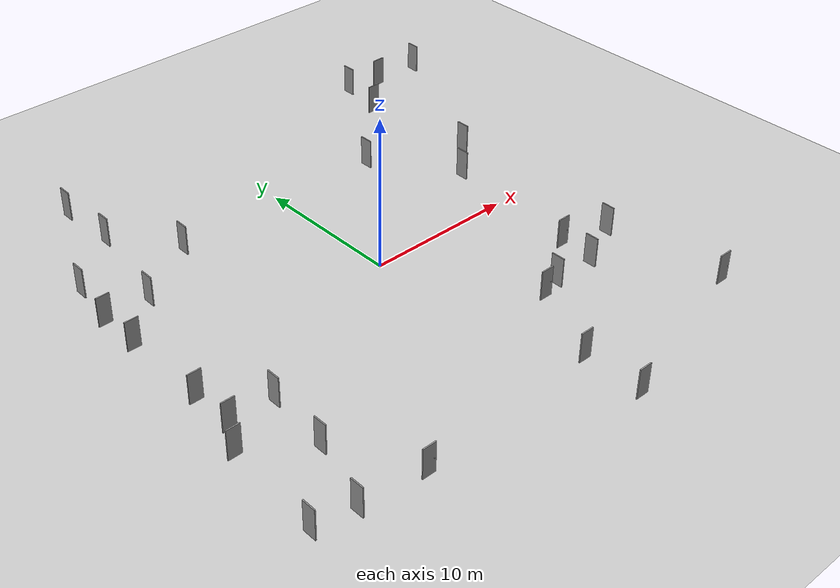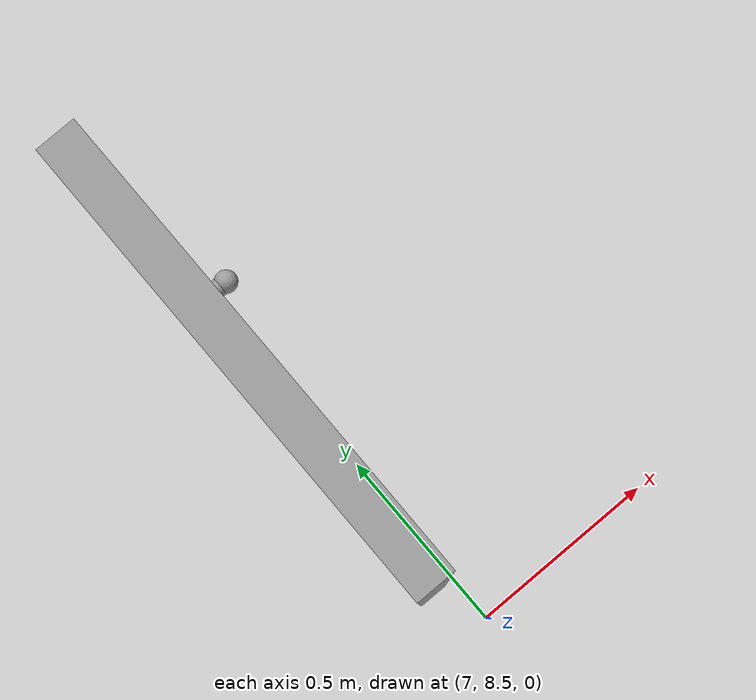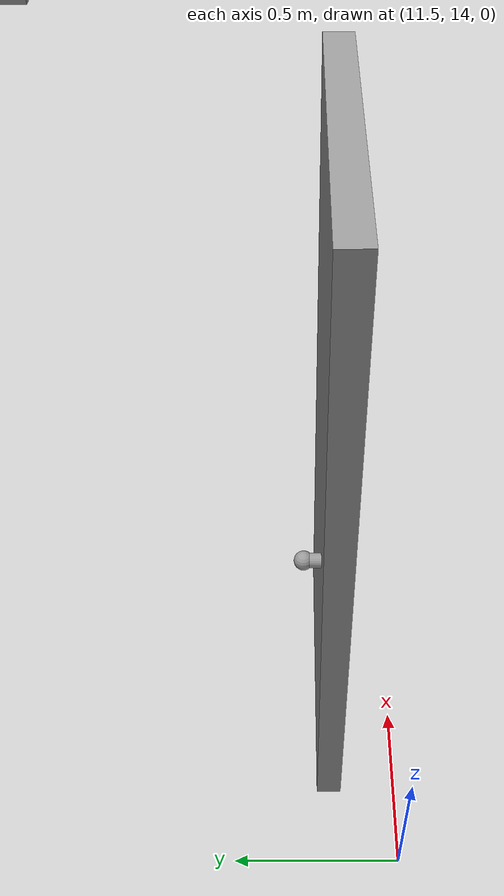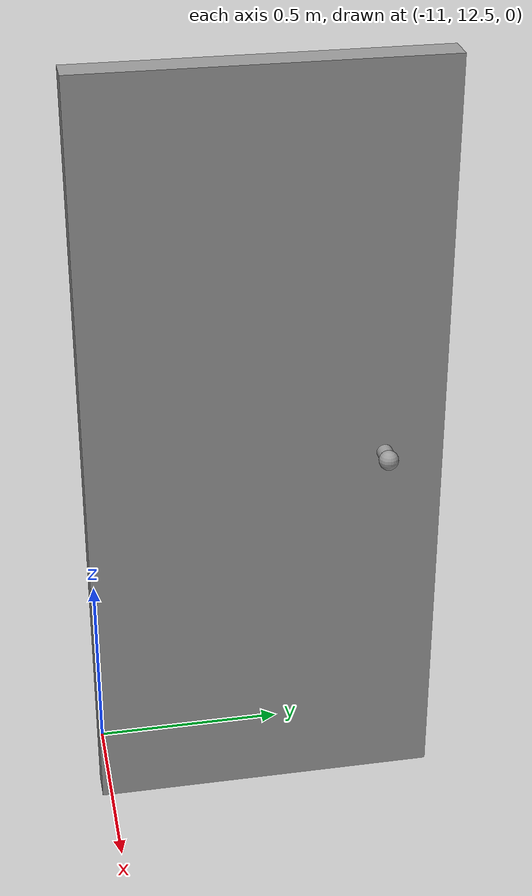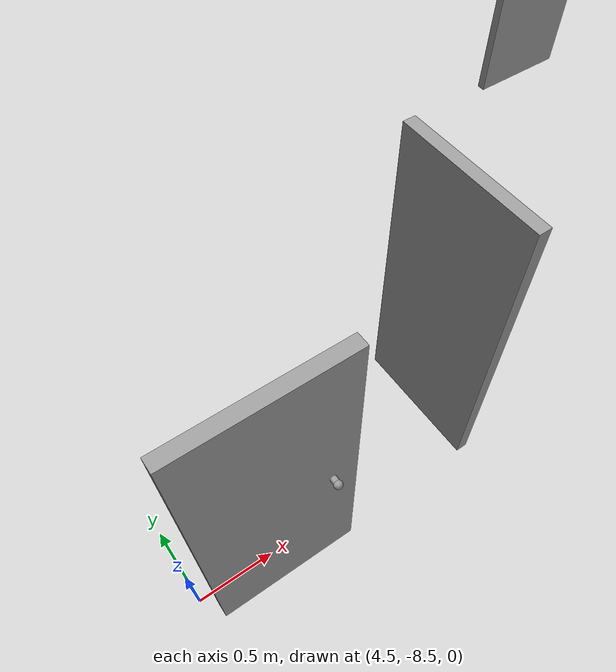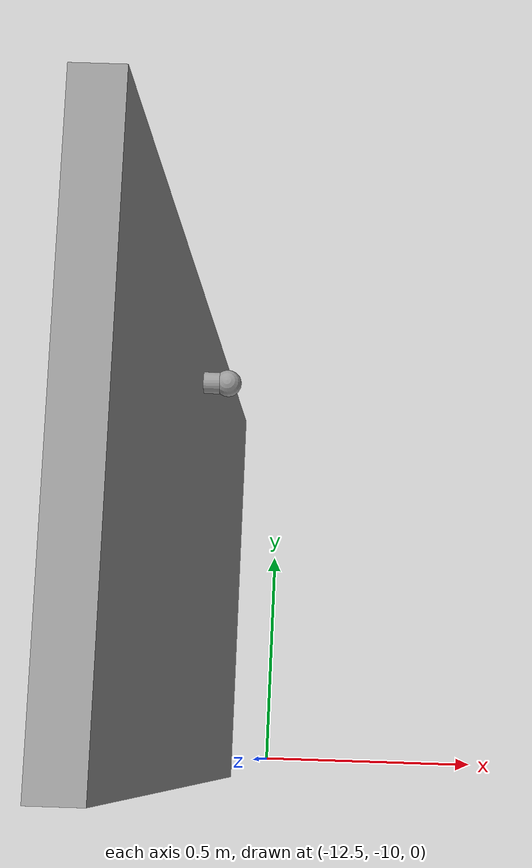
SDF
<sdf version="1.6">
 <world name="default">
  <light name="sun" type="directional">
   <pose>0 0 10 0 -0 0</pose>
   <diffuse>0.8 0.8 0.8 1</diffuse>
   <specular>0.2 0.2 0.2 1</specular>
   <attenuation>
    <range>1000</range>
    <constant>0.9</constant>
    <linear>0.01</linear>
    <quadratic>0.001</quadratic>
   </attenuation>
   <direction>-0.5 0.1 -0.9</direction>
  </light>
  <model name="ground_plane">
   <static>1</static>
   <link name="link">
    <collision name="collision">
     <geometry><plane><normal>0 0 1</normal><size>100 100</size></plane></geometry>
     <surface>
      <contact><collide_bitmask>65535</collide_bitmask></contact>
      <friction><ode><mu>100</mu><mu2>50</mu2></ode></friction>
     </surface>
    </collision>
    <visual name="visual">
     <cast_shadows>0</cast_shadows>
     <geometry><plane><normal>0 0 1</normal><size>100 100</size></plane></geometry>
     <material>
      <script><uri>file://media/materials/scripts/gazebo.material</uri><name>Gazebo/Grey</name></script>
     </material>
    </visual>
   </link>
  </model>
  <gravity>0 0 -9.8</gravity>
  <magnetic_field>6e-06 2.3e-05 -4.2e-05</magnetic_field>
  <atmosphere type="adiabatic"/>
  <physics name="default_physics" default="0" type="ode">
   <max_step_size>0.0007</max_step_size>
   <real_time_factor>1</real_time_factor>
   <real_time_update_rate>1000</real_time_update_rate>
  </physics>
  <scene><ambient>0.4 0.4 0.4 1</ambient><background>0.7 0.7 0.7 1</background><shadows>1</shadows></scene>
  <spherical_coordinates>
   <surface_model>EARTH_WGS84</surface_model>
   <latitude_deg>0</latitude_deg>
   <longitude_deg>0</longitude_deg>
   <elevation>0</elevation>
   <heading_deg>0</heading_deg>
  </spherical_coordinates>
  <plugin name="puppeteer" filename="libpuppeteer.so">
   <building_name>building</building_name>
   <robot_name>jackal</robot_name>
  </plugin>
  <model name="box_30">
   <pose>17.250000 -20.125000 -0.500000 0.000000 -0.000000 0.000000</pose>
   <static>true</static>
   <link name="box_30_link">
    <collision name="box_30_collision">
     <geometry><box><size>5.500000 0.250000 1</size></box></geometry>
    </collision>
   </link>
  </model>
  <model name="box_31">
   <pose>17.250000 5.125000 -0.500000 0.000000 -0.000000 0.000000</pose>
   <static>true</static>
   <link name="box_31_link">
    <collision name="box_31_collision">
     <geometry><box><size>5.500000 0.250000 1</size></box></geometry>
    </collision>
   </link>
  </model>
  <model name="box_32">
   <pose>14.375000 -7.500000 -0.500000 0.000000 -0.000000 0.000000</pose>
   <static>true</static>
   <link name="box_32_link">
    <collision name="box_32_collision">
     <geometry><box><size>0.250000 25.500000 1</size></box></geometry>
    </collision>
   </link>
  </model>
  <model name="box_33">
   <pose>20.125000 -7.500000 -0.500000 0.000000 -0.000000 0.000000</pose>
   <static>true</static>
   <link name="box_33_link">
    <collision name="box_33_collision">
     <geometry><box><size>0.250000 25.500000 1</size></box></geometry>
    </collision>
   </link>
  </model>
  <model name="box_34">
   <pose>-10.700000 -5.725000 -0.500000 0.000000 -0.000000 0.000000</pose>
   <static>true</static>
   <link name="box_34_link">
    <collision name="box_34_collision">
     <geometry><box><size>3.400000 0.250000 1</size></box></geometry>
    </collision>
   </link>
  </model>
  <model name="box_35">
   <pose>-10.700000 5.725000 -0.500000 0.000000 -0.000000 0.000000</pose>
   <static>true</static>
   <link name="box_35_link">
    <collision name="box_35_collision">
     <geometry><box><size>3.400000 0.250000 1</size></box></geometry>
    </collision>
   </link>
  </model>
  <model name="box_36">
   <pose>-12.525000 0.000000 -0.500000 0.000000 -0.000000 0.000000</pose>
   <static>true</static>
   <link name="box_36_link">
    <collision name="box_36_collision">
     <geometry><box><size>0.250000 11.700000 1</size></box></geometry>
    </collision>
   </link>
  </model>
  <model name="box_37">
   <pose>-8.875000 0.000000 -0.500000 0.000000 -0.000000 0.000000</pose>
   <static>true</static>
   <link name="box_37_link">
    <collision name="box_37_collision">
     <geometry><box><size>0.250000 11.700000 1</size></box></geometry>
    </collision>
   </link>
  </model>
  <model name="box_38">
   <pose>-17.350000 -2.915000 -0.500000 0.000000 -0.000000 0.000000</pose>
   <static>true</static>
   <link name="box_38_link">
    <collision name="box_38_collision">
     <geometry><box><size>5.300000 0.250000 1</size></box></geometry>
    </collision>
   </link>
  </model>
  <model name="box_39">
   <pose>-17.350000 2.725000 -0.500000 0.000000 -0.000000 0.000000</pose>
   <static>true</static>
   <link name="box_39_link">
    <collision name="box_39_collision">
     <geometry><box><size>5.300000 0.250000 1</size></box></geometry>
    </collision>
   </link>
  </model>
  <model name="box_40">
   <pose>-20.125000 -0.095000 -0.500000 0.000000 -0.000000 0.000000</pose>
   <static>true</static>
   <link name="box_40_link">
    <collision name="box_40_collision">
     <geometry><box><size>0.250000 5.890000 1</size></box></geometry>
    </collision>
   </link>
  </model>
  <model name="box_41">
   <pose>-14.575000 -0.095000 -0.500000 0.000000 -0.000000 0.000000</pose>
   <static>true</static>
   <link name="box_41_link">
    <collision name="box_41_collision">
     <geometry><box><size>0.250000 5.890000 1</size></box></geometry>
    </collision>
   </link>
  </model>
  <model name="box_42">
   <pose>-10.750000 -20.125000 -0.500000 0.000000 -0.000000 0.000000</pose>
   <static>true</static>
   <link name="box_42_link">
    <collision name="box_42_collision">
     <geometry><box><size>2.500000 0.250000 1</size></box></geometry>
    </collision>
   </link>
  </model>
  <model name="box_43">
   <pose>-10.750000 -14.875000 -0.500000 0.000000 -0.000000 0.000000</pose>
   <static>true</static>
   <link name="box_43_link">
    <collision name="box_43_collision">
     <geometry><box><size>2.500000 0.250000 1</size></box></geometry>
    </collision>
   </link>
  </model>
  <model name="box_44">
   <pose>-12.125000 -17.500000 -0.500000 0.000000 -0.000000 0.000000</pose>
   <static>true</static>
   <link name="box_44_link">
    <collision name="box_44_collision">
     <geometry><box><size>0.250000 5.500000 1</size></box></geometry>
    </collision>
   </link>
  </model>
  <model name="box_45">
   <pose>-9.375000 -17.500000 -0.500000 0.000000 -0.000000 0.000000</pose>
   <static>true</static>
   <link name="box_45_link">
    <collision name="box_45_collision">
     <geometry><box><size>0.250000 5.500000 1</size></box></geometry>
    </collision>
   </link>
  </model>
  <model name="box_46">
   <pose>-18.400000 -20.125000 -0.500000 0.000000 -0.000000 0.000000</pose>
   <static>true</static>
   <link name="box_46_link">
    <collision name="box_46_collision">
     <geometry><box><size>3.200000 0.250000 1</size></box></geometry>
    </collision>
   </link>
  </model>
  <model name="box_47">
   <pose>-18.400000 -12.875000 -0.500000 0.000000 -0.000000 0.000000</pose>
   <static>true</static>
   <link name="box_47_link">
    <collision name="box_47_collision">
     <geometry><box><size>3.200000 0.250000 1</size></box></geometry>
    </collision>
   </link>
  </model>
  <model name="box_48">
   <pose>-20.125000 -16.500000 -0.500000 0.000000 -0.000000 0.000000</pose>
   <static>true</static>
   <link name="box_48_link">
    <collision name="box_48_collision">
     <geometry><box><size>0.250000 7.500000 1</size></box></geometry>
    </collision>
   </link>
  </model>
  <model name="box_49">
   <pose>-16.675000 -16.500000 -0.500000 0.000000 -0.000000 0.000000</pose>
   <static>true</static>
   <link name="box_49_link">
    <collision name="box_49_collision">
     <geometry><box><size>0.250000 7.500000 1</size></box></geometry>
    </collision>
   </link>
  </model>
  <model name="box_50">
   <pose>-2.150000 -9.125000 -0.500000 0.000000 -0.000000 0.000000</pose>
   <static>true</static>
   <link name="box_50_link">
    <collision name="box_50_collision">
     <geometry><box><size>9.700000 0.250000 1</size></box></geometry>
    </collision>
   </link>
  </model>
  <model name="box_51">
   <pose>-2.150000 -4.875000 -0.500000 0.000000 -0.000000 0.000000</pose>
   <static>true</static>
   <link name="box_51_link">
    <collision name="box_51_collision">
     <geometry><box><size>9.700000 0.250000 1</size></box></geometry>
    </collision>
   </link>
  </model>
  <model name="box_52">
   <pose>-7.125000 -7.000000 -0.500000 0.000000 -0.000000 0.000000</pose>
   <static>true</static>
   <link name="box_52_link">
    <collision name="box_52_collision">
     <geometry><box><size>0.250000 4.500000 1</size></box></geometry>
    </collision>
   </link>
  </model>
  <model name="box_53">
   <pose>2.825000 -7.000000 -0.500000 0.000000 -0.000000 0.000000</pose>
   <static>true</static>
   <link name="box_53_link">
    <collision name="box_53_collision">
     <geometry><box><size>0.250000 4.500000 1</size></box></geometry>
    </collision>
   </link>
  </model>
  <include>
   <name>door_0</name>
   <pose>-10.987250 16.475000 1.000000 0.000000 -0.000000 1.571000</pose>
   <uri>model://simple_door2</uri>
  </include>
  <include>
   <name>door_1</name>
   <pose>-14.624989 9.030960 1.000000 0.000000 -0.000000 1.571000</pose>
   <uri>model://simple_door2</uri>
  </include>
  <include>
   <name>door_2</name>
   <pose>-10.775058 12.475000 1.000000 0.000000 -0.000000 1.571000</pose>
   <uri>model://simple_door2</uri>
  </include>
  <include>
   <name>door_3</name>
   <pose>-7.761390 8.625000 1.000000 0.000000 -0.000000 1.571000</pose>
   <uri>model://simple_door2</uri>
  </include>
  <include>
   <name>door_4</name>
   <pose>6.935080 8.625000 1.000000 0.000000 -0.000000 1.571000</pose>
   <uri>model://simple_door2</uri>
  </include>
  <include>
   <name>door_5</name>
   <pose>12.624992 14.208450 1.000000 0.000000 -0.000000 -3.141185</pose>
   <uri>model://simple_door2</uri>
  </include>
  <include>
   <name>door_6</name>
   <pose>12.625004 16.932710 1.000000 0.000000 -0.000000 1.571000</pose>
   <uri>model://simple_door2</uri>
  </include>
  <include>
   <name>door_7</name>
   <pose>18.478948 16.484045 1.000000 0.000000 -0.000000 1.571000</pose>
   <uri>model://simple_door2</uri>
  </include>
  <include>
   <name>door_8</name>
   <pose>15.475004 16.925590 1.000000 0.000000 -0.000000 -3.141185</pose>
   <uri>model://simple_door2</uri>
  </include>
  <include>
   <name>door_9</name>
   <pose>-14.625002 6.214056 1.000000 0.000000 -0.000000 -3.141185</pose>
   <uri>model://simple_door2</uri>
  </include>
  <include>
   <name>door_10</name>
   <pose>-14.625002 3.346128 1.000000 0.000000 -0.000000 -3.141185</pose>
   <uri>model://simple_door2</uri>
  </include>
  <include>
   <name>door_11</name>
   <pose>-14.625007 -2.443840 1.000000 0.000000 -0.000000 -3.141185</pose>
   <uri>model://simple_door2</uri>
  </include>
  <include>
   <name>door_12</name>
   <pose>-14.625002 -5.329808 1.000000 0.000000 -0.000000 -3.141185</pose>
   <uri>model://simple_door2</uri>
  </include>
  <include>
   <name>door_13</name>
   <pose>-15.625002 -7.097462 1.000000 0.000000 -0.000000 -3.141185</pose>
   <uri>model://simple_door2</uri>
  </include>
  <include>
   <name>door_14</name>
   <pose>-14.061730 -14.474920 1.000000 0.000000 -0.000000 1.571000</pose>
   <uri>model://simple_door2</uri>
  </include>
  <include>
   <name>door_15</name>
   <pose>-10.281770 -14.475003 1.000000 0.000000 -0.000000 0.000000</pose>
   <uri>model://simple_door2</uri>
  </include>
  <include>
   <name>door_16</name>
   <pose>-12.150050 5.775003 1.000000 0.000000 -0.000000 1.571000</pose>
   <uri>model://simple_door2</uri>
  </include>
  <include>
   <name>door_17</name>
   <pose>-12.167990 -5.775000 1.000000 0.000000 -0.000000 1.571000</pose>
   <uri>model://simple_door2</uri>
  </include>
  <include>
   <name>door_18</name>
   <pose>-16.625004 -14.047594 1.000000 0.000000 -0.000000 1.571000</pose>
   <uri>model://simple_door2</uri>
  </include>
  <include>
   <name>door_19</name>
   <pose>-12.624997 -10.048217 1.000000 0.000000 -0.000000 1.571000</pose>
   <uri>model://simple_door2</uri>
  </include>
  <include>
   <name>door_20</name>
   <pose>13.031310 5.774995 1.000000 0.000000 -0.000000 1.571000</pose>
   <uri>model://simple_door2</uri>
  </include>
  <include>
   <name>door_21</name>
   <pose>10.625002 3.385427 1.000000 0.000000 -0.000000 1.571000</pose>
   <uri>model://simple_door2</uri>
  </include>
  <include>
   <name>door_22</name>
   <pose>9.193120 -5.774995 1.000000 0.000000 -0.000000 0.000000</pose>
   <uri>model://simple_door2</uri>
  </include>
  <include>
   <name>door_23</name>
   <pose>2.924993 -13.796720 1.000000 0.000000 -0.000000 -3.141185</pose>
   <uri>model://simple_door2</uri>
  </include>
  <include>
   <name>door_24</name>
   <pose>2.925000 -17.742519 1.000000 0.000000 -0.000000 -3.141185</pose>
   <uri>model://simple_door2</uri>
  </include>
  <include>
   <name>door_25</name>
   <pose>4.583714 -8.625000 1.000000 0.000000 -0.000000 0.000000</pose>
   <uri>model://simple_door2</uri>
  </include>
  <include>
   <name>door_26</name>
   <pose>6.431060 -8.625000 1.000000 0.000000 -0.000000 1.571000</pose>
   <uri>model://simple_door2</uri>
  </include>
  <include>
   <name>door_27</name>
   <pose>9.399440 -8.625000 1.000000 0.000000 -0.000000 1.571000</pose>
   <uri>model://simple_door2</uri>
  </include>
  <include>
   <name>door_28</name>
   <pose>13.352706 -14.475002 1.000000 0.000000 -0.000000 0.000000</pose>
   <uri>model://simple_door2</uri>
  </include>
  <include>
   <name>door_29</name>
   <pose>12.624998 -7.129598 1.000000 0.000000 -0.000000 1.571000</pose>
   <uri>model://simple_door2</uri>
  </include>
 </world>
</sdf>

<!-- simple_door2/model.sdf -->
<sdf version='1.6'>
  <model name='simple_door2'>
    <link name='link'>
      <self_collide>0</self_collide>
      <enable_wind>0</enable_wind>
      <kinematic>0</kinematic>
      <pose frame=''>0.45 0 -0 0 -0 0</pose>
      <gravity>0</gravity>
      <visual name='visual'>
        <geometry>
          <box>
            <size>0.9 0.075 2</size>
          </box>
        </geometry>
        <material>
          <script>
            <name>Gazebo/Grey</name>
            <uri>file://media/materials/scripts/gazebo.material</uri>
          </script>
          <shader type='pixel'>
            <normal_map>__default__</normal_map>
          </shader>
          <ambient>0.3 0.3 0.3 1</ambient>
          <diffuse>0.7 0.7 0.7 1</diffuse>
          <specular>0.01 0.01 0.01 1</specular>
          <emissive>0 0 0 1</emissive>
        </material>
        <pose frame=''>0 0 0 0 -0 0</pose>
        <transparency>0</transparency>
        <cast_shadows>1</cast_shadows>
      </visual>

    </link>
    <link name='link_2'>
      <pose frame=''>0.750001 -0.0525 -0 1.57 6e-06 0</pose>
      <gravity>0</gravity>
      <self_collide>0</self_collide>
      <kinematic>0</kinematic>
      <enable_wind>0</enable_wind>
      <visual name='visual'>
        <pose frame=''>0 0 0 0 -0 0</pose>
        <geometry>
          <cylinder>
            <radius>0.02</radius>
            <length>0.03</length>
          </cylinder>
        </geometry>
        <material>
          <lighting>1</lighting>
          <script>
            <uri>file://media/materials/scripts/gazebo.material</uri>
            <name>Gazebo/Grey</name>
          </script>
          <shader type='pixel'>
            <normal_map>__default__</normal_map>
          </shader>
          <ambient>0.3 0.3 0.3 1</ambient>
          <diffuse>0.7 0.7 0.7 1</diffuse>
          <specular>0.01 0.01 0.01 1</specular>
          <emissive>0 0 0 1</emissive>
        </material>
        <transparency>0</transparency>
        <cast_shadows>1</cast_shadows>
      </visual>

    </link>
    <link name='link_3'>
      <pose frame=''>0.750001 -0.0825 2.4e-05 -6.1e-05 6e-06 0.010426</pose>
      <gravity>0</gravity>
      <self_collide>0</self_collide>
      <kinematic>0</kinematic>
      <enable_wind>0</enable_wind>
      <visual name='visual'>
        <pose frame=''>0 0 0 0 -0 0</pose>
        <geometry>
          <sphere>
            <radius>0.025</radius>
          </sphere>
        </geometry>
        <material>
          <lighting>1</lighting>
          <script>
            <uri>file://media/materials/scripts/gazebo.material</uri>
            <name>Gazebo/Grey</name>
          </script>
          <shader type='pixel'>
            <normal_map>__default__</normal_map>
          </shader>
          <ambient>0.3 0.3 0.3 1</ambient>
          <diffuse>0.7 0.7 0.7 1</diffuse>
          <specular>0.01 0.01 0.01 1</specular>
          <emissive>0 0 0 1</emissive>
        </material>
        <transparency>0</transparency>
        <cast_shadows>1</cast_shadows>
      </visual>
    </link>
    <joint name='link_2_JOINT_3' type='fixed'>
      <parent>link_2</parent>
      <child>link_3</child>
      <pose frame=''>0 0 0 0 -0 0</pose>
      <physics>
        <ode>
          <limit>
            <cfm>0</cfm>
            <erp>0.2</erp>
          </limit>
          <suspension>
            <cfm>0</cfm>
            <erp>0.2</erp>
          </suspension>
        </ode>
      </physics>
    </joint>
    <joint name='link_JOINT_2' type='revolute'>
      <parent>link</parent>
      <child>link_2</child>
      <pose frame=''>0 0 0 0 -0 0</pose>
      <axis>
        <xyz>1 0 0</xyz>
        <use_parent_model_frame>0</use_parent_model_frame>
        <limit>
          <lower>-1.79769e+308</lower>
          <upper>1.79769e+308</upper>
          <effort>-1</effort>
          <velocity>-1</velocity>
        </limit>
        <dynamics>
          <spring_reference>0</spring_reference>
          <spring_stiffness>0</spring_stiffness>
          <damping>0</damping>
        </dynamics>
      </axis>
      <physics>
        <ode>
          <limit>
            <cfm>0</cfm>
            <erp>0.2</erp>
          </limit>
          <suspension>
            <cfm>0</cfm>
            <erp>0.2</erp>
          </suspension>
        </ode>
      </physics>
    </joint>
    <static>0</static>
    <allow_auto_disable>1</allow_auto_disable>
  </model>
</sdf>
